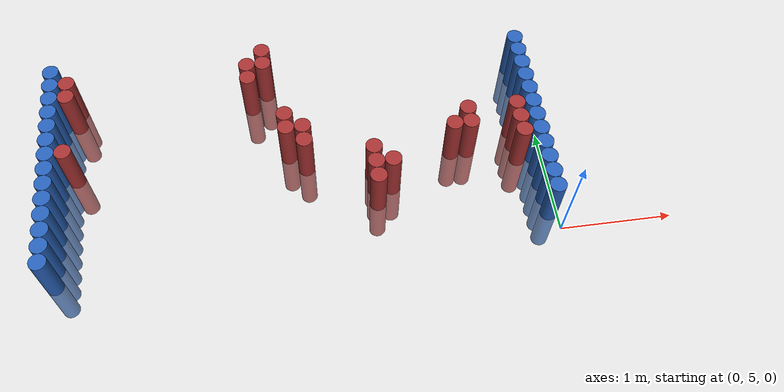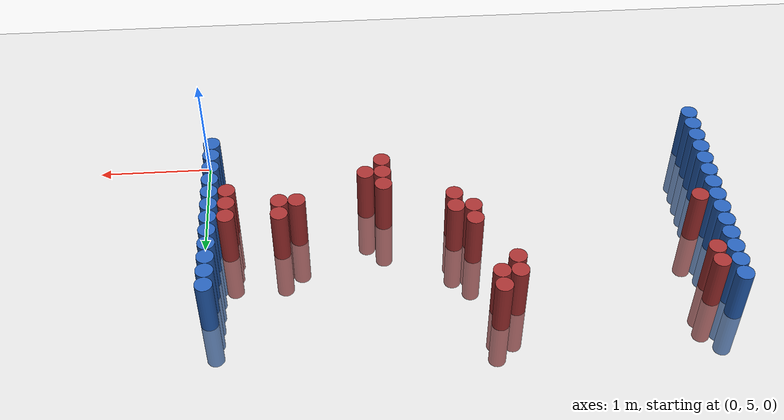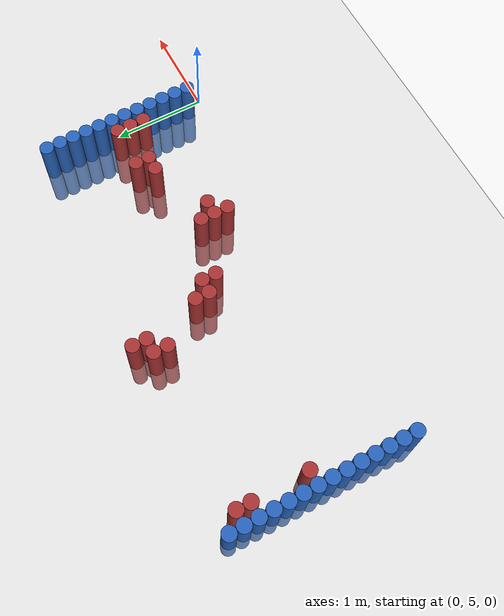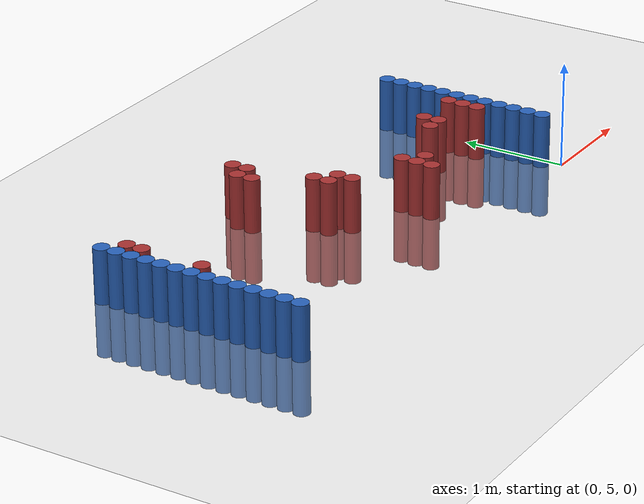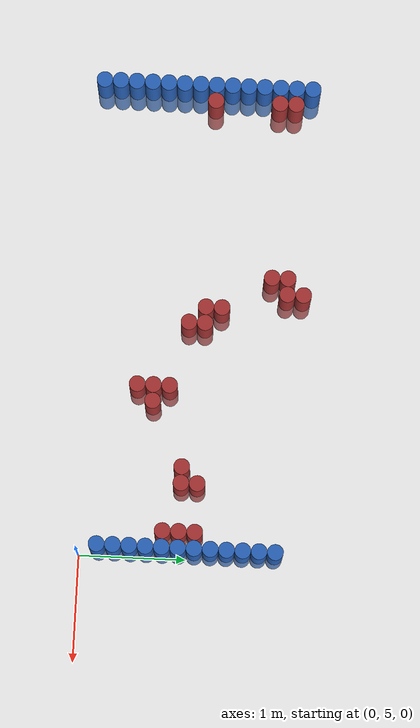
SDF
<sdf version="1.6">
 <world name="default">
  <model name="ground_plane">
   <static>1</static>
   <link name="link">
    <collision name="collision">
     <geometry><plane><normal>0 0 1</normal><size>100 100</size></plane></geometry>
     <surface><friction><ode><mu>100</mu><mu2>50</mu2></ode></friction></surface>
    </collision>
    <visual name="visual">
     <cast_shadows>0</cast_shadows>
     <geometry><plane><normal>0 0 1</normal><size>100 100</size></plane></geometry>
     <material>
      <script><uri>file://media/materials/scripts/gazebo.material</uri><name>Gazebo/Grey</name></script>
     </material>
    </visual>
   </link>
  </model>
  <model name="unit_cylinder_95">
   <static>1</static>
   <pose>-4.425000 5.025000 0.000000 0.000000 0.000000 0.000000</pose>
   <link name="link">
    <inertial>
     <mass>1</mass>
     <inertia><ixx>0.145833</ixx><ixy>0</ixy><ixz>0</ixz><iyy>0.145833</iyy><iyz>0</iyz><izz>0.125</izz></inertia>
    </inertial>
    <collision name="collision">
     <geometry><cylinder><radius>0.075000</radius><length>1</length></cylinder></geometry>
    </collision>
    <visual name="visual">
     <geometry><cylinder><radius>0.075000</radius><length>1</length></cylinder></geometry>
     <material>
      <ambient>0.152000 0.379000 0.720000 1</ambient>
      <diffuse>0.152000 0.379000 0.720000 1</diffuse>
     </material>
     <material>
      <script><name>Gazebo/Grey</name><uri>file://media/materials/scripts/gazebo.material</uri></script>
     </material>
    </visual>
   </link>
  </model>
  <model name="unit_cylinder_96">
   <static>1</static>
   <pose>-4.425000 5.175000 0.000000 0.000000 0.000000 0.000000</pose>
   <link name="link">
    <inertial>
     <mass>1</mass>
     <inertia><ixx>0.145833</ixx><ixy>0</ixy><ixz>0</ixz><iyy>0.145833</iyy><iyz>0</iyz><izz>0.125</izz></inertia>
    </inertial>
    <collision name="collision">
     <geometry><cylinder><radius>0.075000</radius><length>1</length></cylinder></geometry>
    </collision>
    <visual name="visual">
     <geometry><cylinder><radius>0.075000</radius><length>1</length></cylinder></geometry>
     <material>
      <ambient>0.152000 0.379000 0.720000 1</ambient>
      <diffuse>0.152000 0.379000 0.720000 1</diffuse>
     </material>
     <material>
      <script><name>Gazebo/Grey</name><uri>file://media/materials/scripts/gazebo.material</uri></script>
     </material>
    </visual>
   </link>
  </model>
  <model name="unit_cylinder_97">
   <static>1</static>
   <pose>-4.425000 5.325000 0.000000 0.000000 0.000000 0.000000</pose>
   <link name="link">
    <inertial>
     <mass>1</mass>
     <inertia><ixx>0.145833</ixx><ixy>0</ixy><ixz>0</ixz><iyy>0.145833</iyy><iyz>0</iyz><izz>0.125</izz></inertia>
    </inertial>
    <collision name="collision">
     <geometry><cylinder><radius>0.075000</radius><length>1</length></cylinder></geometry>
    </collision>
    <visual name="visual">
     <geometry><cylinder><radius>0.075000</radius><length>1</length></cylinder></geometry>
     <material>
      <ambient>0.152000 0.379000 0.720000 1</ambient>
      <diffuse>0.152000 0.379000 0.720000 1</diffuse>
     </material>
     <material>
      <script><name>Gazebo/Grey</name><uri>file://media/materials/scripts/gazebo.material</uri></script>
     </material>
    </visual>
   </link>
  </model>
  <model name="unit_cylinder_98">
   <static>1</static>
   <pose>-4.425000 5.475000 0.000000 0.000000 0.000000 0.000000</pose>
   <link name="link">
    <inertial>
     <mass>1</mass>
     <inertia><ixx>0.145833</ixx><ixy>0</ixy><ixz>0</ixz><iyy>0.145833</iyy><iyz>0</iyz><izz>0.125</izz></inertia>
    </inertial>
    <collision name="collision">
     <geometry><cylinder><radius>0.075000</radius><length>1</length></cylinder></geometry>
    </collision>
    <visual name="visual">
     <geometry><cylinder><radius>0.075000</radius><length>1</length></cylinder></geometry>
     <material>
      <ambient>0.152000 0.379000 0.720000 1</ambient>
      <diffuse>0.152000 0.379000 0.720000 1</diffuse>
     </material>
     <material>
      <script><name>Gazebo/Grey</name><uri>file://media/materials/scripts/gazebo.material</uri></script>
     </material>
    </visual>
   </link>
  </model>
  <model name="unit_cylinder_99">
   <static>1</static>
   <pose>-4.425000 5.625000 0.000000 0.000000 0.000000 0.000000</pose>
   <link name="link">
    <inertial>
     <mass>1</mass>
     <inertia><ixx>0.145833</ixx><ixy>0</ixy><ixz>0</ixz><iyy>0.145833</iyy><iyz>0</iyz><izz>0.125</izz></inertia>
    </inertial>
    <collision name="collision">
     <geometry><cylinder><radius>0.075000</radius><length>1</length></cylinder></geometry>
    </collision>
    <visual name="visual">
     <geometry><cylinder><radius>0.075000</radius><length>1</length></cylinder></geometry>
     <material>
      <ambient>0.152000 0.379000 0.720000 1</ambient>
      <diffuse>0.152000 0.379000 0.720000 1</diffuse>
     </material>
     <material>
      <script><name>Gazebo/Grey</name><uri>file://media/materials/scripts/gazebo.material</uri></script>
     </material>
    </visual>
   </link>
  </model>
  <model name="unit_cylinder_100">
   <static>1</static>
   <pose>-4.425000 5.775000 0.000000 0.000000 0.000000 0.000000</pose>
   <link name="link">
    <inertial>
     <mass>1</mass>
     <inertia><ixx>0.145833</ixx><ixy>0</ixy><ixz>0</ixz><iyy>0.145833</iyy><iyz>0</iyz><izz>0.125</izz></inertia>
    </inertial>
    <collision name="collision">
     <geometry><cylinder><radius>0.075000</radius><length>1</length></cylinder></geometry>
    </collision>
    <visual name="visual">
     <geometry><cylinder><radius>0.075000</radius><length>1</length></cylinder></geometry>
     <material>
      <ambient>0.152000 0.379000 0.720000 1</ambient>
      <diffuse>0.152000 0.379000 0.720000 1</diffuse>
     </material>
     <material>
      <script><name>Gazebo/Grey</name><uri>file://media/materials/scripts/gazebo.material</uri></script>
     </material>
    </visual>
   </link>
  </model>
  <model name="unit_cylinder_101">
   <static>1</static>
   <pose>-4.425000 5.925000 0.000000 0.000000 0.000000 0.000000</pose>
   <link name="link">
    <inertial>
     <mass>1</mass>
     <inertia><ixx>0.145833</ixx><ixy>0</ixy><ixz>0</ixz><iyy>0.145833</iyy><iyz>0</iyz><izz>0.125</izz></inertia>
    </inertial>
    <collision name="collision">
     <geometry><cylinder><radius>0.075000</radius><length>1</length></cylinder></geometry>
    </collision>
    <visual name="visual">
     <geometry><cylinder><radius>0.075000</radius><length>1</length></cylinder></geometry>
     <material>
      <ambient>0.152000 0.379000 0.720000 1</ambient>
      <diffuse>0.152000 0.379000 0.720000 1</diffuse>
     </material>
     <material>
      <script><name>Gazebo/Grey</name><uri>file://media/materials/scripts/gazebo.material</uri></script>
     </material>
    </visual>
   </link>
  </model>
  <model name="unit_cylinder_102">
   <static>1</static>
   <pose>-4.425000 6.075000 0.000000 0.000000 0.000000 0.000000</pose>
   <link name="link">
    <inertial>
     <mass>1</mass>
     <inertia><ixx>0.145833</ixx><ixy>0</ixy><ixz>0</ixz><iyy>0.145833</iyy><iyz>0</iyz><izz>0.125</izz></inertia>
    </inertial>
    <collision name="collision">
     <geometry><cylinder><radius>0.075000</radius><length>1</length></cylinder></geometry>
    </collision>
    <visual name="visual">
     <geometry><cylinder><radius>0.075000</radius><length>1</length></cylinder></geometry>
     <material>
      <ambient>0.152000 0.379000 0.720000 1</ambient>
      <diffuse>0.152000 0.379000 0.720000 1</diffuse>
     </material>
     <material>
      <script><name>Gazebo/Grey</name><uri>file://media/materials/scripts/gazebo.material</uri></script>
     </material>
    </visual>
   </link>
  </model>
  <model name="unit_cylinder_103">
   <static>1</static>
   <pose>-4.425000 6.225000 0.000000 0.000000 0.000000 0.000000</pose>
   <link name="link">
    <inertial>
     <mass>1</mass>
     <inertia><ixx>0.145833</ixx><ixy>0</ixy><ixz>0</ixz><iyy>0.145833</iyy><iyz>0</iyz><izz>0.125</izz></inertia>
    </inertial>
    <collision name="collision">
     <geometry><cylinder><radius>0.075000</radius><length>1</length></cylinder></geometry>
    </collision>
    <visual name="visual">
     <geometry><cylinder><radius>0.075000</radius><length>1</length></cylinder></geometry>
     <material>
      <ambient>0.152000 0.379000 0.720000 1</ambient>
      <diffuse>0.152000 0.379000 0.720000 1</diffuse>
     </material>
     <material>
      <script><name>Gazebo/Grey</name><uri>file://media/materials/scripts/gazebo.material</uri></script>
     </material>
    </visual>
   </link>
  </model>
  <model name="unit_cylinder_104">
   <static>1</static>
   <pose>-4.425000 6.375000 0.000000 0.000000 0.000000 0.000000</pose>
   <link name="link">
    <inertial>
     <mass>1</mass>
     <inertia><ixx>0.145833</ixx><ixy>0</ixy><ixz>0</ixz><iyy>0.145833</iyy><iyz>0</iyz><izz>0.125</izz></inertia>
    </inertial>
    <collision name="collision">
     <geometry><cylinder><radius>0.075000</radius><length>1</length></cylinder></geometry>
    </collision>
    <visual name="visual">
     <geometry><cylinder><radius>0.075000</radius><length>1</length></cylinder></geometry>
     <material>
      <ambient>0.152000 0.379000 0.720000 1</ambient>
      <diffuse>0.152000 0.379000 0.720000 1</diffuse>
     </material>
     <material>
      <script><name>Gazebo/Grey</name><uri>file://media/materials/scripts/gazebo.material</uri></script>
     </material>
    </visual>
   </link>
  </model>
  <model name="unit_cylinder_105">
   <static>1</static>
   <pose>-4.425000 6.525000 0.000000 0.000000 0.000000 0.000000</pose>
   <link name="link">
    <inertial>
     <mass>1</mass>
     <inertia><ixx>0.145833</ixx><ixy>0</ixy><ixz>0</ixz><iyy>0.145833</iyy><iyz>0</iyz><izz>0.125</izz></inertia>
    </inertial>
    <collision name="collision">
     <geometry><cylinder><radius>0.075000</radius><length>1</length></cylinder></geometry>
    </collision>
    <visual name="visual">
     <geometry><cylinder><radius>0.075000</radius><length>1</length></cylinder></geometry>
     <material>
      <ambient>0.152000 0.379000 0.720000 1</ambient>
      <diffuse>0.152000 0.379000 0.720000 1</diffuse>
     </material>
     <material>
      <script><name>Gazebo/Grey</name><uri>file://media/materials/scripts/gazebo.material</uri></script>
     </material>
    </visual>
   </link>
  </model>
  <model name="unit_cylinder_106">
   <static>1</static>
   <pose>-4.425000 6.675000 0.000000 0.000000 0.000000 0.000000</pose>
   <link name="link">
    <inertial>
     <mass>1</mass>
     <inertia><ixx>0.145833</ixx><ixy>0</ixy><ixz>0</ixz><iyy>0.145833</iyy><iyz>0</iyz><izz>0.125</izz></inertia>
    </inertial>
    <collision name="collision">
     <geometry><cylinder><radius>0.075000</radius><length>1</length></cylinder></geometry>
    </collision>
    <visual name="visual">
     <geometry><cylinder><radius>0.075000</radius><length>1</length></cylinder></geometry>
     <material>
      <ambient>0.152000 0.379000 0.720000 1</ambient>
      <diffuse>0.152000 0.379000 0.720000 1</diffuse>
     </material>
     <material>
      <script><name>Gazebo/Grey</name><uri>file://media/materials/scripts/gazebo.material</uri></script>
     </material>
    </visual>
   </link>
  </model>
  <model name="unit_cylinder_107">
   <static>1</static>
   <pose>-4.425000 6.825000 0.000000 0.000000 0.000000 0.000000</pose>
   <link name="link">
    <inertial>
     <mass>1</mass>
     <inertia><ixx>0.145833</ixx><ixy>0</ixy><ixz>0</ixz><iyy>0.145833</iyy><iyz>0</iyz><izz>0.125</izz></inertia>
    </inertial>
    <collision name="collision">
     <geometry><cylinder><radius>0.075000</radius><length>1</length></cylinder></geometry>
    </collision>
    <visual name="visual">
     <geometry><cylinder><radius>0.075000</radius><length>1</length></cylinder></geometry>
     <material>
      <ambient>0.152000 0.379000 0.720000 1</ambient>
      <diffuse>0.152000 0.379000 0.720000 1</diffuse>
     </material>
     <material>
      <script><name>Gazebo/Grey</name><uri>file://media/materials/scripts/gazebo.material</uri></script>
     </material>
    </visual>
   </link>
  </model>
  <model name="unit_cylinder_108">
   <static>1</static>
   <pose>-4.425000 6.975000 0.000000 0.000000 0.000000 0.000000</pose>
   <link name="link">
    <inertial>
     <mass>1</mass>
     <inertia><ixx>0.145833</ixx><ixy>0</ixy><ixz>0</ixz><iyy>0.145833</iyy><iyz>0</iyz><izz>0.125</izz></inertia>
    </inertial>
    <collision name="collision">
     <geometry><cylinder><radius>0.075000</radius><length>1</length></cylinder></geometry>
    </collision>
    <visual name="visual">
     <geometry><cylinder><radius>0.075000</radius><length>1</length></cylinder></geometry>
     <material>
      <ambient>0.152000 0.379000 0.720000 1</ambient>
      <diffuse>0.152000 0.379000 0.720000 1</diffuse>
     </material>
     <material>
      <script><name>Gazebo/Grey</name><uri>file://media/materials/scripts/gazebo.material</uri></script>
     </material>
    </visual>
   </link>
  </model>
  <model name="unit_cylinder_126">
   <static>1</static>
   <pose>-4.275000 6.075000 0.000000 0.000000 0.000000 0.000000</pose>
   <link name="link">
    <inertial>
     <mass>1</mass>
     <inertia><ixx>0.145833</ixx><ixy>0</ixy><ixz>0</ixz><iyy>0.145833</iyy><iyz>0</iyz><izz>0.125</izz></inertia>
    </inertial>
    <collision name="collision">
     <geometry><cylinder><radius>0.075000</radius><length>1</length></cylinder></geometry>
    </collision>
    <visual name="visual">
     <geometry><cylinder><radius>0.075000</radius><length>1</length></cylinder></geometry>
     <material>
      <ambient>0.648000 0.192000 0.192000 1</ambient>
      <diffuse>0.648000 0.192000 0.192000 1</diffuse>
     </material>
     <material>
      <script><name>Gazebo/Grey</name><uri>file://media/materials/scripts/gazebo.material</uri></script>
     </material>
    </visual>
   </link>
  </model>
  <model name="unit_cylinder_127">
   <static>1</static>
   <pose>-4.275000 6.675000 0.000000 0.000000 0.000000 0.000000</pose>
   <link name="link">
    <inertial>
     <mass>1</mass>
     <inertia><ixx>0.145833</ixx><ixy>0</ixy><ixz>0</ixz><iyy>0.145833</iyy><iyz>0</iyz><izz>0.125</izz></inertia>
    </inertial>
    <collision name="collision">
     <geometry><cylinder><radius>0.075000</radius><length>1</length></cylinder></geometry>
    </collision>
    <visual name="visual">
     <geometry><cylinder><radius>0.075000</radius><length>1</length></cylinder></geometry>
     <material>
      <ambient>0.648000 0.192000 0.192000 1</ambient>
      <diffuse>0.648000 0.192000 0.192000 1</diffuse>
     </material>
     <material>
      <script><name>Gazebo/Grey</name><uri>file://media/materials/scripts/gazebo.material</uri></script>
     </material>
    </visual>
   </link>
  </model>
  <model name="unit_cylinder_128">
   <static>1</static>
   <pose>-4.275000 6.825000 0.000000 0.000000 0.000000 0.000000</pose>
   <link name="link">
    <inertial>
     <mass>1</mass>
     <inertia><ixx>0.145833</ixx><ixy>0</ixy><ixz>0</ixz><iyy>0.145833</iyy><iyz>0</iyz><izz>0.125</izz></inertia>
    </inertial>
    <collision name="collision">
     <geometry><cylinder><radius>0.075000</radius><length>1</length></cylinder></geometry>
    </collision>
    <visual name="visual">
     <geometry><cylinder><radius>0.075000</radius><length>1</length></cylinder></geometry>
     <material>
      <ambient>0.648000 0.192000 0.192000 1</ambient>
      <diffuse>0.648000 0.192000 0.192000 1</diffuse>
     </material>
     <material>
      <script><name>Gazebo/Grey</name><uri>file://media/materials/scripts/gazebo.material</uri></script>
     </material>
    </visual>
   </link>
  </model>
  <model name="unit_cylinder_148">
   <static>1</static>
   <pose>-2.625000 6.675000 0.000000 0.000000 0.000000 0.000000</pose>
   <link name="link">
    <inertial>
     <mass>1</mass>
     <inertia><ixx>0.145833</ixx><ixy>0</ixy><ixz>0</ixz><iyy>0.145833</iyy><iyz>0</iyz><izz>0.125</izz></inertia>
    </inertial>
    <collision name="collision">
     <geometry><cylinder><radius>0.075000</radius><length>1</length></cylinder></geometry>
    </collision>
    <visual name="visual">
     <geometry><cylinder><radius>0.075000</radius><length>1</length></cylinder></geometry>
     <material>
      <ambient>0.648000 0.192000 0.192000 1</ambient>
      <diffuse>0.648000 0.192000 0.192000 1</diffuse>
     </material>
     <material>
      <script><name>Gazebo/Grey</name><uri>file://media/materials/scripts/gazebo.material</uri></script>
     </material>
    </visual>
   </link>
  </model>
  <model name="unit_cylinder_149">
   <static>1</static>
   <pose>-2.625000 6.825000 0.000000 0.000000 0.000000 0.000000</pose>
   <link name="link">
    <inertial>
     <mass>1</mass>
     <inertia><ixx>0.145833</ixx><ixy>0</ixy><ixz>0</ixz><iyy>0.145833</iyy><iyz>0</iyz><izz>0.125</izz></inertia>
    </inertial>
    <collision name="collision">
     <geometry><cylinder><radius>0.075000</radius><length>1</length></cylinder></geometry>
    </collision>
    <visual name="visual">
     <geometry><cylinder><radius>0.075000</radius><length>1</length></cylinder></geometry>
     <material>
      <ambient>0.648000 0.192000 0.192000 1</ambient>
      <diffuse>0.648000 0.192000 0.192000 1</diffuse>
     </material>
     <material>
      <script><name>Gazebo/Grey</name><uri>file://media/materials/scripts/gazebo.material</uri></script>
     </material>
    </visual>
   </link>
  </model>
  <model name="unit_cylinder_152">
   <static>1</static>
   <pose>-2.475000 6.825000 0.000000 0.000000 0.000000 0.000000</pose>
   <link name="link">
    <inertial>
     <mass>1</mass>
     <inertia><ixx>0.145833</ixx><ixy>0</ixy><ixz>0</ixz><iyy>0.145833</iyy><iyz>0</iyz><izz>0.125</izz></inertia>
    </inertial>
    <collision name="collision">
     <geometry><cylinder><radius>0.075000</radius><length>1</length></cylinder></geometry>
    </collision>
    <visual name="visual">
     <geometry><cylinder><radius>0.075000</radius><length>1</length></cylinder></geometry>
     <material>
      <ambient>0.648000 0.192000 0.192000 1</ambient>
      <diffuse>0.648000 0.192000 0.192000 1</diffuse>
     </material>
     <material>
      <script><name>Gazebo/Grey</name><uri>file://media/materials/scripts/gazebo.material</uri></script>
     </material>
    </visual>
   </link>
  </model>
  <model name="unit_cylinder_153">
   <static>1</static>
   <pose>-2.475000 6.975000 0.000000 0.000000 0.000000 0.000000</pose>
   <link name="link">
    <inertial>
     <mass>1</mass>
     <inertia><ixx>0.145833</ixx><ixy>0</ixy><ixz>0</ixz><iyy>0.145833</iyy><iyz>0</iyz><izz>0.125</izz></inertia>
    </inertial>
    <collision name="collision">
     <geometry><cylinder><radius>0.075000</radius><length>1</length></cylinder></geometry>
    </collision>
    <visual name="visual">
     <geometry><cylinder><radius>0.075000</radius><length>1</length></cylinder></geometry>
     <material>
      <ambient>0.648000 0.192000 0.192000 1</ambient>
      <diffuse>0.648000 0.192000 0.192000 1</diffuse>
     </material>
     <material>
      <script><name>Gazebo/Grey</name><uri>file://media/materials/scripts/gazebo.material</uri></script>
     </material>
    </visual>
   </link>
  </model>
  <model name="unit_cylinder_154">
   <static>1</static>
   <pose>-2.325000 6.075000 0.000000 0.000000 0.000000 0.000000</pose>
   <link name="link">
    <inertial>
     <mass>1</mass>
     <inertia><ixx>0.145833</ixx><ixy>0</ixy><ixz>0</ixz><iyy>0.145833</iyy><iyz>0</iyz><izz>0.125</izz></inertia>
    </inertial>
    <collision name="collision">
     <geometry><cylinder><radius>0.075000</radius><length>1</length></cylinder></geometry>
    </collision>
    <visual name="visual">
     <geometry><cylinder><radius>0.075000</radius><length>1</length></cylinder></geometry>
     <material>
      <ambient>0.648000 0.192000 0.192000 1</ambient>
      <diffuse>0.648000 0.192000 0.192000 1</diffuse>
     </material>
     <material>
      <script><name>Gazebo/Grey</name><uri>file://media/materials/scripts/gazebo.material</uri></script>
     </material>
    </visual>
   </link>
  </model>
  <model name="unit_cylinder_155">
   <static>1</static>
   <pose>-2.325000 6.225000 0.000000 0.000000 0.000000 0.000000</pose>
   <link name="link">
    <inertial>
     <mass>1</mass>
     <inertia><ixx>0.145833</ixx><ixy>0</ixy><ixz>0</ixz><iyy>0.145833</iyy><iyz>0</iyz><izz>0.125</izz></inertia>
    </inertial>
    <collision name="collision">
     <geometry><cylinder><radius>0.075000</radius><length>1</length></cylinder></geometry>
    </collision>
    <visual name="visual">
     <geometry><cylinder><radius>0.075000</radius><length>1</length></cylinder></geometry>
     <material>
      <ambient>0.648000 0.192000 0.192000 1</ambient>
      <diffuse>0.648000 0.192000 0.192000 1</diffuse>
     </material>
     <material>
      <script><name>Gazebo/Grey</name><uri>file://media/materials/scripts/gazebo.material</uri></script>
     </material>
    </visual>
   </link>
  </model>
  <model name="unit_cylinder_156">
   <static>1</static>
   <pose>-2.175000 5.925000 0.000000 0.000000 0.000000 0.000000</pose>
   <link name="link">
    <inertial>
     <mass>1</mass>
     <inertia><ixx>0.145833</ixx><ixy>0</ixy><ixz>0</ixz><iyy>0.145833</iyy><iyz>0</iyz><izz>0.125</izz></inertia>
    </inertial>
    <collision name="collision">
     <geometry><cylinder><radius>0.075000</radius><length>1</length></cylinder></geometry>
    </collision>
    <visual name="visual">
     <geometry><cylinder><radius>0.075000</radius><length>1</length></cylinder></geometry>
     <material>
      <ambient>0.648000 0.192000 0.192000 1</ambient>
      <diffuse>0.648000 0.192000 0.192000 1</diffuse>
     </material>
     <material>
      <script><name>Gazebo/Grey</name><uri>file://media/materials/scripts/gazebo.material</uri></script>
     </material>
    </visual>
   </link>
  </model>
  <model name="unit_cylinder_157">
   <static>1</static>
   <pose>-2.175000 6.075000 0.000000 0.000000 0.000000 0.000000</pose>
   <link name="link">
    <inertial>
     <mass>1</mass>
     <inertia><ixx>0.145833</ixx><ixy>0</ixy><ixz>0</ixz><iyy>0.145833</iyy><iyz>0</iyz><izz>0.125</izz></inertia>
    </inertial>
    <collision name="collision">
     <geometry><cylinder><radius>0.075000</radius><length>1</length></cylinder></geometry>
    </collision>
    <visual name="visual">
     <geometry><cylinder><radius>0.075000</radius><length>1</length></cylinder></geometry>
     <material>
      <ambient>0.648000 0.192000 0.192000 1</ambient>
      <diffuse>0.648000 0.192000 0.192000 1</diffuse>
     </material>
     <material>
      <script><name>Gazebo/Grey</name><uri>file://media/materials/scripts/gazebo.material</uri></script>
     </material>
    </visual>
   </link>
  </model>
  <model name="unit_cylinder_161">
   <static>1</static>
   <pose>-1.575000 5.475000 0.000000 0.000000 0.000000 0.000000</pose>
   <link name="link">
    <inertial>
     <mass>1</mass>
     <inertia><ixx>0.145833</ixx><ixy>0</ixy><ixz>0</ixz><iyy>0.145833</iyy><iyz>0</iyz><izz>0.125</izz></inertia>
    </inertial>
    <collision name="collision">
     <geometry><cylinder><radius>0.075000</radius><length>1</length></cylinder></geometry>
    </collision>
    <visual name="visual">
     <geometry><cylinder><radius>0.075000</radius><length>1</length></cylinder></geometry>
     <material>
      <ambient>0.648000 0.192000 0.192000 1</ambient>
      <diffuse>0.648000 0.192000 0.192000 1</diffuse>
     </material>
     <material>
      <script><name>Gazebo/Grey</name><uri>file://media/materials/scripts/gazebo.material</uri></script>
     </material>
    </visual>
   </link>
  </model>
  <model name="unit_cylinder_162">
   <static>1</static>
   <pose>-1.575000 5.625000 0.000000 0.000000 0.000000 0.000000</pose>
   <link name="link">
    <inertial>
     <mass>1</mass>
     <inertia><ixx>0.145833</ixx><ixy>0</ixy><ixz>0</ixz><iyy>0.145833</iyy><iyz>0</iyz><izz>0.125</izz></inertia>
    </inertial>
    <collision name="collision">
     <geometry><cylinder><radius>0.075000</radius><length>1</length></cylinder></geometry>
    </collision>
    <visual name="visual">
     <geometry><cylinder><radius>0.075000</radius><length>1</length></cylinder></geometry>
     <material>
      <ambient>0.648000 0.192000 0.192000 1</ambient>
      <diffuse>0.648000 0.192000 0.192000 1</diffuse>
     </material>
     <material>
      <script><name>Gazebo/Grey</name><uri>file://media/materials/scripts/gazebo.material</uri></script>
     </material>
    </visual>
   </link>
  </model>
  <model name="unit_cylinder_163">
   <static>1</static>
   <pose>-1.575000 5.775000 0.000000 0.000000 0.000000 0.000000</pose>
   <link name="link">
    <inertial>
     <mass>1</mass>
     <inertia><ixx>0.145833</ixx><ixy>0</ixy><ixz>0</ixz><iyy>0.145833</iyy><iyz>0</iyz><izz>0.125</izz></inertia>
    </inertial>
    <collision name="collision">
     <geometry><cylinder><radius>0.075000</radius><length>1</length></cylinder></geometry>
    </collision>
    <visual name="visual">
     <geometry><cylinder><radius>0.075000</radius><length>1</length></cylinder></geometry>
     <material>
      <ambient>0.648000 0.192000 0.192000 1</ambient>
      <diffuse>0.648000 0.192000 0.192000 1</diffuse>
     </material>
     <material>
      <script><name>Gazebo/Grey</name><uri>file://media/materials/scripts/gazebo.material</uri></script>
     </material>
    </visual>
   </link>
  </model>
  <model name="unit_cylinder_164">
   <static>1</static>
   <pose>-1.425000 5.625000 0.000000 0.000000 0.000000 0.000000</pose>
   <link name="link">
    <inertial>
     <mass>1</mass>
     <inertia><ixx>0.145833</ixx><ixy>0</ixy><ixz>0</ixz><iyy>0.145833</iyy><iyz>0</iyz><izz>0.125</izz></inertia>
    </inertial>
    <collision name="collision">
     <geometry><cylinder><radius>0.075000</radius><length>1</length></cylinder></geometry>
    </collision>
    <visual name="visual">
     <geometry><cylinder><radius>0.075000</radius><length>1</length></cylinder></geometry>
     <material>
      <ambient>0.648000 0.192000 0.192000 1</ambient>
      <diffuse>0.648000 0.192000 0.192000 1</diffuse>
     </material>
     <material>
      <script><name>Gazebo/Grey</name><uri>file://media/materials/scripts/gazebo.material</uri></script>
     </material>
    </visual>
   </link>
  </model>
  <model name="unit_cylinder_177">
   <static>1</static>
   <pose>-0.825000 5.925000 0.000000 0.000000 0.000000 0.000000</pose>
   <link name="link">
    <inertial>
     <mass>1</mass>
     <inertia><ixx>0.145833</ixx><ixy>0</ixy><ixz>0</ixz><iyy>0.145833</iyy><iyz>0</iyz><izz>0.125</izz></inertia>
    </inertial>
    <collision name="collision">
     <geometry><cylinder><radius>0.075000</radius><length>1</length></cylinder></geometry>
    </collision>
    <visual name="visual">
     <geometry><cylinder><radius>0.075000</radius><length>1</length></cylinder></geometry>
     <material>
      <ambient>0.648000 0.192000 0.192000 1</ambient>
      <diffuse>0.648000 0.192000 0.192000 1</diffuse>
     </material>
     <material>
      <script><name>Gazebo/Grey</name><uri>file://media/materials/scripts/gazebo.material</uri></script>
     </material>
    </visual>
   </link>
  </model>
  <model name="unit_cylinder_183">
   <static>1</static>
   <pose>-0.675000 5.925000 0.000000 0.000000 0.000000 0.000000</pose>
   <link name="link">
    <inertial>
     <mass>1</mass>
     <inertia><ixx>0.145833</ixx><ixy>0</ixy><ixz>0</ixz><iyy>0.145833</iyy><iyz>0</iyz><izz>0.125</izz></inertia>
    </inertial>
    <collision name="collision">
     <geometry><cylinder><radius>0.075000</radius><length>1</length></cylinder></geometry>
    </collision>
    <visual name="visual">
     <geometry><cylinder><radius>0.075000</radius><length>1</length></cylinder></geometry>
     <material>
      <ambient>0.648000 0.192000 0.192000 1</ambient>
      <diffuse>0.648000 0.192000 0.192000 1</diffuse>
     </material>
     <material>
      <script><name>Gazebo/Grey</name><uri>file://media/materials/scripts/gazebo.material</uri></script>
     </material>
    </visual>
   </link>
  </model>
  <model name="unit_cylinder_184">
   <static>1</static>
   <pose>-0.675000 6.075000 0.000000 0.000000 0.000000 0.000000</pose>
   <link name="link">
    <inertial>
     <mass>1</mass>
     <inertia><ixx>0.145833</ixx><ixy>0</ixy><ixz>0</ixz><iyy>0.145833</iyy><iyz>0</iyz><izz>0.125</izz></inertia>
    </inertial>
    <collision name="collision">
     <geometry><cylinder><radius>0.075000</radius><length>1</length></cylinder></geometry>
    </collision>
    <visual name="visual">
     <geometry><cylinder><radius>0.075000</radius><length>1</length></cylinder></geometry>
     <material>
      <ambient>0.648000 0.192000 0.192000 1</ambient>
      <diffuse>0.648000 0.192000 0.192000 1</diffuse>
     </material>
     <material>
      <script><name>Gazebo/Grey</name><uri>file://media/materials/scripts/gazebo.material</uri></script>
     </material>
    </visual>
   </link>
  </model>
  <model name="unit_cylinder_193">
   <static>1</static>
   <pose>-0.225000 5.775000 0.000000 0.000000 0.000000 0.000000</pose>
   <link name="link">
    <inertial>
     <mass>1</mass>
     <inertia><ixx>0.145833</ixx><ixy>0</ixy><ixz>0</ixz><iyy>0.145833</iyy><iyz>0</iyz><izz>0.125</izz></inertia>
    </inertial>
    <collision name="collision">
     <geometry><cylinder><radius>0.075000</radius><length>1</length></cylinder></geometry>
    </collision>
    <visual name="visual">
     <geometry><cylinder><radius>0.075000</radius><length>1</length></cylinder></geometry>
     <material>
      <ambient>0.648000 0.192000 0.192000 1</ambient>
      <diffuse>0.648000 0.192000 0.192000 1</diffuse>
     </material>
     <material>
      <script><name>Gazebo/Grey</name><uri>file://media/materials/scripts/gazebo.material</uri></script>
     </material>
    </visual>
   </link>
  </model>
  <model name="unit_cylinder_194">
   <static>1</static>
   <pose>-0.225000 5.925000 0.000000 0.000000 0.000000 0.000000</pose>
   <link name="link">
    <inertial>
     <mass>1</mass>
     <inertia><ixx>0.145833</ixx><ixy>0</ixy><ixz>0</ixz><iyy>0.145833</iyy><iyz>0</iyz><izz>0.125</izz></inertia>
    </inertial>
    <collision name="collision">
     <geometry><cylinder><radius>0.075000</radius><length>1</length></cylinder></geometry>
    </collision>
    <visual name="visual">
     <geometry><cylinder><radius>0.075000</radius><length>1</length></cylinder></geometry>
     <material>
      <ambient>0.648000 0.192000 0.192000 1</ambient>
      <diffuse>0.648000 0.192000 0.192000 1</diffuse>
     </material>
     <material>
      <script><name>Gazebo/Grey</name><uri>file://media/materials/scripts/gazebo.material</uri></script>
     </material>
    </visual>
   </link>
  </model>
  <model name="unit_cylinder_195">
   <static>1</static>
   <pose>-0.225000 6.075000 0.000000 0.000000 0.000000 0.000000</pose>
   <link name="link">
    <inertial>
     <mass>1</mass>
     <inertia><ixx>0.145833</ixx><ixy>0</ixy><ixz>0</ixz><iyy>0.145833</iyy><iyz>0</iyz><izz>0.125</izz></inertia>
    </inertial>
    <collision name="collision">
     <geometry><cylinder><radius>0.075000</radius><length>1</length></cylinder></geometry>
    </collision>
    <visual name="visual">
     <geometry><cylinder><radius>0.075000</radius><length>1</length></cylinder></geometry>
     <material>
      <ambient>0.648000 0.192000 0.192000 1</ambient>
      <diffuse>0.648000 0.192000 0.192000 1</diffuse>
     </material>
     <material>
      <script><name>Gazebo/Grey</name><uri>file://media/materials/scripts/gazebo.material</uri></script>
     </material>
    </visual>
   </link>
  </model>
  <model name="unit_cylinder_206">
   <static>1</static>
   <pose>-0.075000 5.175000 0.000000 0.000000 0.000000 0.000000</pose>
   <link name="link">
    <inertial>
     <mass>1</mass>
     <inertia><ixx>0.145833</ixx><ixy>0</ixy><ixz>0</ixz><iyy>0.145833</iyy><iyz>0</iyz><izz>0.125</izz></inertia>
    </inertial>
    <collision name="collision">
     <geometry><cylinder><radius>0.075000</radius><length>1</length></cylinder></geometry>
    </collision>
    <visual name="visual">
     <geometry><cylinder><radius>0.075000</radius><length>1</length></cylinder></geometry>
     <material>
      <ambient>0.152000 0.379000 0.720000 1</ambient>
      <diffuse>0.152000 0.379000 0.720000 1</diffuse>
     </material>
     <material>
      <script><name>Gazebo/Grey</name><uri>file://media/materials/scripts/gazebo.material</uri></script>
     </material>
    </visual>
   </link>
  </model>
  <model name="unit_cylinder_207">
   <static>1</static>
   <pose>-0.075000 5.325000 0.000000 0.000000 0.000000 0.000000</pose>
   <link name="link">
    <inertial>
     <mass>1</mass>
     <inertia><ixx>0.145833</ixx><ixy>0</ixy><ixz>0</ixz><iyy>0.145833</iyy><iyz>0</iyz><izz>0.125</izz></inertia>
    </inertial>
    <collision name="collision">
     <geometry><cylinder><radius>0.075000</radius><length>1</length></cylinder></geometry>
    </collision>
    <visual name="visual">
     <geometry><cylinder><radius>0.075000</radius><length>1</length></cylinder></geometry>
     <material>
      <ambient>0.152000 0.379000 0.720000 1</ambient>
      <diffuse>0.152000 0.379000 0.720000 1</diffuse>
     </material>
     <material>
      <script><name>Gazebo/Grey</name><uri>file://media/materials/scripts/gazebo.material</uri></script>
     </material>
    </visual>
   </link>
  </model>
  <model name="unit_cylinder_208">
   <static>1</static>
   <pose>-0.075000 5.475000 0.000000 0.000000 0.000000 0.000000</pose>
   <link name="link">
    <inertial>
     <mass>1</mass>
     <inertia><ixx>0.145833</ixx><ixy>0</ixy><ixz>0</ixz><iyy>0.145833</iyy><iyz>0</iyz><izz>0.125</izz></inertia>
    </inertial>
    <collision name="collision">
     <geometry><cylinder><radius>0.075000</radius><length>1</length></cylinder></geometry>
    </collision>
    <visual name="visual">
     <geometry><cylinder><radius>0.075000</radius><length>1</length></cylinder></geometry>
     <material>
      <ambient>0.152000 0.379000 0.720000 1</ambient>
      <diffuse>0.152000 0.379000 0.720000 1</diffuse>
     </material>
     <material>
      <script><name>Gazebo/Grey</name><uri>file://media/materials/scripts/gazebo.material</uri></script>
     </material>
    </visual>
   </link>
  </model>
  <model name="unit_cylinder_209">
   <static>1</static>
   <pose>-0.075000 5.625000 0.000000 0.000000 0.000000 0.000000</pose>
   <link name="link">
    <inertial>
     <mass>1</mass>
     <inertia><ixx>0.145833</ixx><ixy>0</ixy><ixz>0</ixz><iyy>0.145833</iyy><iyz>0</iyz><izz>0.125</izz></inertia>
    </inertial>
    <collision name="collision">
     <geometry><cylinder><radius>0.075000</radius><length>1</length></cylinder></geometry>
    </collision>
    <visual name="visual">
     <geometry><cylinder><radius>0.075000</radius><length>1</length></cylinder></geometry>
     <material>
      <ambient>0.152000 0.379000 0.720000 1</ambient>
      <diffuse>0.152000 0.379000 0.720000 1</diffuse>
     </material>
     <material>
      <script><name>Gazebo/Grey</name><uri>file://media/materials/scripts/gazebo.material</uri></script>
     </material>
    </visual>
   </link>
  </model>
  <model name="unit_cylinder_210">
   <static>1</static>
   <pose>-0.075000 5.775000 0.000000 0.000000 0.000000 0.000000</pose>
   <link name="link">
    <inertial>
     <mass>1</mass>
     <inertia><ixx>0.145833</ixx><ixy>0</ixy><ixz>0</ixz><iyy>0.145833</iyy><iyz>0</iyz><izz>0.125</izz></inertia>
    </inertial>
    <collision name="collision">
     <geometry><cylinder><radius>0.075000</radius><length>1</length></cylinder></geometry>
    </collision>
    <visual name="visual">
     <geometry><cylinder><radius>0.075000</radius><length>1</length></cylinder></geometry>
     <material>
      <ambient>0.152000 0.379000 0.720000 1</ambient>
      <diffuse>0.152000 0.379000 0.720000 1</diffuse>
     </material>
     <material>
      <script><name>Gazebo/Grey</name><uri>file://media/materials/scripts/gazebo.material</uri></script>
     </material>
    </visual>
   </link>
  </model>
  <model name="unit_cylinder_211">
   <static>1</static>
   <pose>-0.075000 5.925000 0.000000 0.000000 0.000000 0.000000</pose>
   <link name="link">
    <inertial>
     <mass>1</mass>
     <inertia><ixx>0.145833</ixx><ixy>0</ixy><ixz>0</ixz><iyy>0.145833</iyy><iyz>0</iyz><izz>0.125</izz></inertia>
    </inertial>
    <collision name="collision">
     <geometry><cylinder><radius>0.075000</radius><length>1</length></cylinder></geometry>
    </collision>
    <visual name="visual">
     <geometry><cylinder><radius>0.075000</radius><length>1</length></cylinder></geometry>
     <material>
      <ambient>0.152000 0.379000 0.720000 1</ambient>
      <diffuse>0.152000 0.379000 0.720000 1</diffuse>
     </material>
     <material>
      <script><name>Gazebo/Grey</name><uri>file://media/materials/scripts/gazebo.material</uri></script>
     </material>
    </visual>
   </link>
  </model>
  <model name="unit_cylinder_212">
   <static>1</static>
   <pose>-0.075000 6.075000 0.000000 0.000000 0.000000 0.000000</pose>
   <link name="link">
    <inertial>
     <mass>1</mass>
     <inertia><ixx>0.145833</ixx><ixy>0</ixy><ixz>0</ixz><iyy>0.145833</iyy><iyz>0</iyz><izz>0.125</izz></inertia>
    </inertial>
    <collision name="collision">
     <geometry><cylinder><radius>0.075000</radius><length>1</length></cylinder></geometry>
    </collision>
    <visual name="visual">
     <geometry><cylinder><radius>0.075000</radius><length>1</length></cylinder></geometry>
     <material>
      <ambient>0.152000 0.379000 0.720000 1</ambient>
      <diffuse>0.152000 0.379000 0.720000 1</diffuse>
     </material>
     <material>
      <script><name>Gazebo/Grey</name><uri>file://media/materials/scripts/gazebo.material</uri></script>
     </material>
    </visual>
   </link>
  </model>
  <model name="unit_cylinder_213">
   <static>1</static>
   <pose>-0.075000 6.225000 0.000000 0.000000 0.000000 0.000000</pose>
   <link name="link">
    <inertial>
     <mass>1</mass>
     <inertia><ixx>0.145833</ixx><ixy>0</ixy><ixz>0</ixz><iyy>0.145833</iyy><iyz>0</iyz><izz>0.125</izz></inertia>
    </inertial>
    <collision name="collision">
     <geometry><cylinder><radius>0.075000</radius><length>1</length></cylinder></geometry>
    </collision>
    <visual name="visual">
     <geometry><cylinder><radius>0.075000</radius><length>1</length></cylinder></geometry>
     <material>
      <ambient>0.152000 0.379000 0.720000 1</ambient>
      <diffuse>0.152000 0.379000 0.720000 1</diffuse>
     </material>
     <material>
      <script><name>Gazebo/Grey</name><uri>file://media/materials/scripts/gazebo.material</uri></script>
     </material>
    </visual>
   </link>
  </model>
  <model name="unit_cylinder_214">
   <static>1</static>
   <pose>-0.075000 6.375000 0.000000 0.000000 0.000000 0.000000</pose>
   <link name="link">
    <inertial>
     <mass>1</mass>
     <inertia><ixx>0.145833</ixx><ixy>0</ixy><ixz>0</ixz><iyy>0.145833</iyy><iyz>0</iyz><izz>0.125</izz></inertia>
    </inertial>
    <collision name="collision">
     <geometry><cylinder><radius>0.075000</radius><length>1</length></cylinder></geometry>
    </collision>
    <visual name="visual">
     <geometry><cylinder><radius>0.075000</radius><length>1</length></cylinder></geometry>
     <material>
      <ambient>0.152000 0.379000 0.720000 1</ambient>
      <diffuse>0.152000 0.379000 0.720000 1</diffuse>
     </material>
     <material>
      <script><name>Gazebo/Grey</name><uri>file://media/materials/scripts/gazebo.material</uri></script>
     </material>
    </visual>
   </link>
  </model>
  <model name="unit_cylinder_215">
   <static>1</static>
   <pose>-0.075000 6.525000 0.000000 0.000000 0.000000 0.000000</pose>
   <link name="link">
    <inertial>
     <mass>1</mass>
     <inertia><ixx>0.145833</ixx><ixy>0</ixy><ixz>0</ixz><iyy>0.145833</iyy><iyz>0</iyz><izz>0.125</izz></inertia>
    </inertial>
    <collision name="collision">
     <geometry><cylinder><radius>0.075000</radius><length>1</length></cylinder></geometry>
    </collision>
    <visual name="visual">
     <geometry><cylinder><radius>0.075000</radius><length>1</length></cylinder></geometry>
     <material>
      <ambient>0.152000 0.379000 0.720000 1</ambient>
      <diffuse>0.152000 0.379000 0.720000 1</diffuse>
     </material>
     <material>
      <script><name>Gazebo/Grey</name><uri>file://media/materials/scripts/gazebo.material</uri></script>
     </material>
    </visual>
   </link>
  </model>
  <model name="unit_cylinder_216">
   <static>1</static>
   <pose>-0.075000 6.675000 0.000000 0.000000 0.000000 0.000000</pose>
   <link name="link">
    <inertial>
     <mass>1</mass>
     <inertia><ixx>0.145833</ixx><ixy>0</ixy><ixz>0</ixz><iyy>0.145833</iyy><iyz>0</iyz><izz>0.125</izz></inertia>
    </inertial>
    <collision name="collision">
     <geometry><cylinder><radius>0.075000</radius><length>1</length></cylinder></geometry>
    </collision>
    <visual name="visual">
     <geometry><cylinder><radius>0.075000</radius><length>1</length></cylinder></geometry>
     <material>
      <ambient>0.152000 0.379000 0.720000 1</ambient>
      <diffuse>0.152000 0.379000 0.720000 1</diffuse>
     </material>
     <material>
      <script><name>Gazebo/Grey</name><uri>file://media/materials/scripts/gazebo.material</uri></script>
     </material>
    </visual>
   </link>
  </model>
  <model name="unit_cylinder_217">
   <static>1</static>
   <pose>-0.075000 6.825000 0.000000 0.000000 0.000000 0.000000</pose>
   <link name="link">
    <inertial>
     <mass>1</mass>
     <inertia><ixx>0.145833</ixx><ixy>0</ixy><ixz>0</ixz><iyy>0.145833</iyy><iyz>0</iyz><izz>0.125</izz></inertia>
    </inertial>
    <collision name="collision">
     <geometry><cylinder><radius>0.075000</radius><length>1</length></cylinder></geometry>
    </collision>
    <visual name="visual">
     <geometry><cylinder><radius>0.075000</radius><length>1</length></cylinder></geometry>
     <material>
      <ambient>0.152000 0.379000 0.720000 1</ambient>
      <diffuse>0.152000 0.379000 0.720000 1</diffuse>
     </material>
     <material>
      <script><name>Gazebo/Grey</name><uri>file://media/materials/scripts/gazebo.material</uri></script>
     </material>
    </visual>
   </link>
  </model>
 </world>
</sdf>
